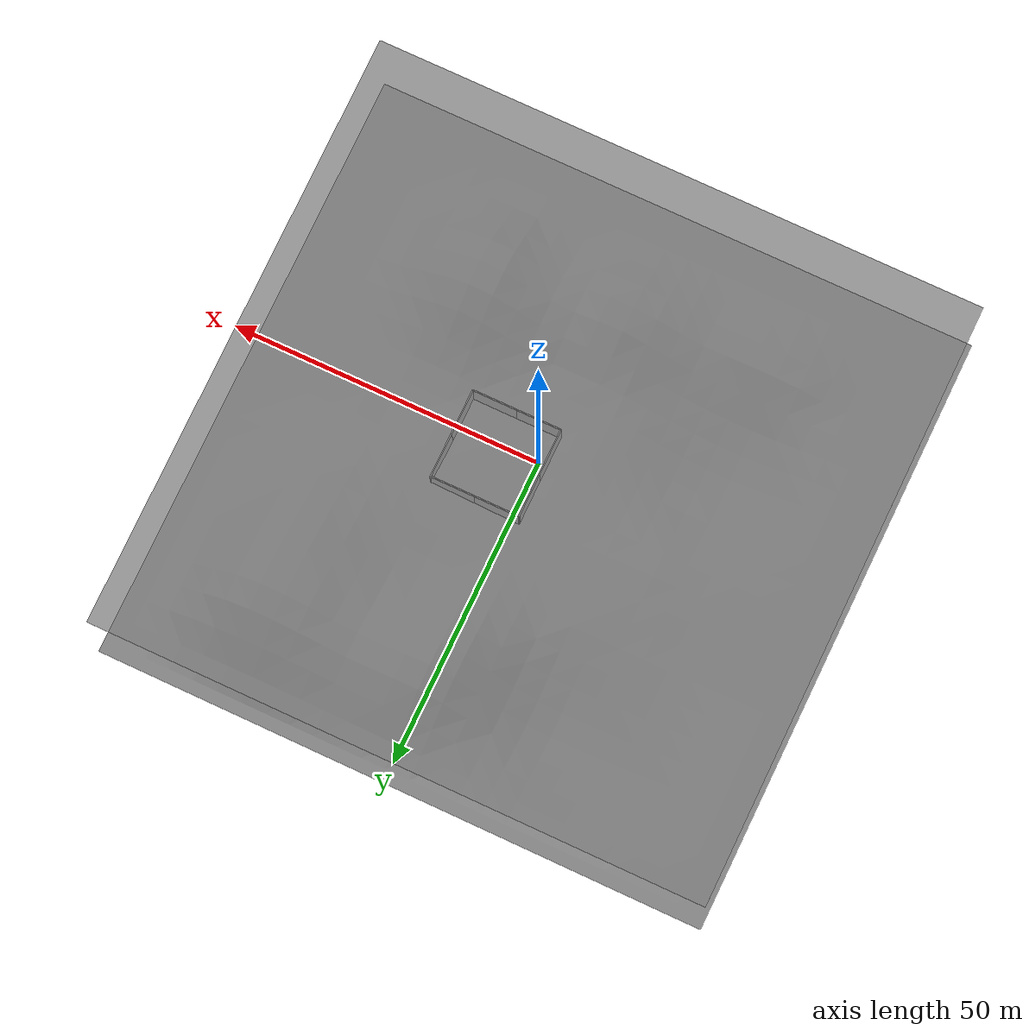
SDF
<?xml version="1.0" ?>
<sdf version="1.6">
  <world name="walls">

    <!-- Base Ignition Gazebo plugins -->
    <plugin
        filename="ignition-gazebo-physics-system"
        name="ignition::gazebo::systems::Physics">
    </plugin>
    <plugin
        filename="ignition-gazebo-user-commands-system"
        name="ignition::gazebo::systems::UserCommands">
    </plugin>
    <plugin
        filename="ignition-gazebo-scene-broadcaster-system"
        name="ignition::gazebo::systems::SceneBroadcaster">
    </plugin>

    <!-- IMU plugin manages all IMU sensors -->
    <plugin filename="libignition-gazebo-imu-system.so"
            name="ignition::gazebo::systems::Imu">
    </plugin>

    <plugin filename="libignition-gazebo-sensors-system.so"
      name="ignition::gazebo::systems::Sensors">
      <render_engine>ogre2</render_engine>
    </plugin>

    <!-- Buoyancy plugin manages buoyancy for all models -->
    <plugin
        filename="ignition-gazebo-buoyancy-system"
        name="ignition::gazebo::systems::Buoyancy">
      <graded_buoyancy>
        <default_density>1000</default_density>
        <density_change>
          <above_depth>0</above_depth>
          <density>1</density>
        </density_change>
      </graded_buoyancy>
    </plugin>

    <!-- Global light source -->
    <light type="directional" name="sun">
      <pose>0 0 150 0 0 0</pose>
      <diffuse>1 1 1 1</diffuse>
      <specular>.1 .1 .1 1</specular>
      <direction>0.3 0.3 -1</direction>
      <cast_shadows>false</cast_shadows>
    </light>

    <!-- Global light source -->
    <light type="directional" name="sun_diffuse">
      <pose>0 0 -150 0 0 0</pose>
      <diffuse>0.6 0.6 0.6 1</diffuse>
      <specular>0 0 0 1</specular>
      <direction>-0.3 -0.3 -1</direction>
      <cast_shadows>false</cast_shadows>
    </light>

    <include>
      <uri>model://min_pipes_environment</uri>
      <pose>0 0 0 0 0 0</pose>
    </include>

    <include>
      <static>true</static>
      <name>Wall1</name>
      <pose>12.15 -10 -20 0 0 0</pose>
      <uri>model://Grey Wall</uri>
    </include>

    <include>
       <static>true</static>
       <name>Wall2</name>
       <pose>4.65 -10 -20 0 0 0</pose>
       <uri>model://Grey Wall</uri>
    </include>

    <include>
       <static>true</static>
       <name>Wall3</name>
       <pose>1 -6.15 -20 0 0 1.5707</pose>
       <uri>model://Grey Wall</uri>
    </include>

    <include>
       <static>true</static>
       <name>Wall4</name>
       <pose>1 1.35 -20 0 0 1.5707</pose>
       <uri>model://Grey Wall</uri>
    </include>

    <include>
       <static>true</static>
       <name>Wall5</name>
       <pose>4.65 5 -20 0 0 0</pose>
       <uri>model://Grey Wall</uri>
    </include>

    <include>
       <static>true</static>
       <name>Wall6</name>
       <pose>12.15 5 -20 0 0 0</pose>
       <uri>model://Grey Wall</uri>
    </include>

    <include>
       <static>true</static>
       <name>Wall7</name>
       <pose>15.80 1.35 -20 0 0 1.5707</pose>
       <uri>model://Grey Wall</uri>
    </include>

    <include>
       <static>true</static>
       <name>Wall8</name>
       <pose>15.80 -6.15 -20 0 0 1.5707</pose>
       <uri>model://Grey Wall</uri>
    </include>

  </world>
</sdf>

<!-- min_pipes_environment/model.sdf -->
<sdf version="1.7">
  <model name="min_pipes_environment">
    <static>true</static>
    <link name="seabed">
      <collision name="seabed">
        <pose>0 0 -20 0 0 1.57</pose>
        <geometry>
          <mesh>
            <uri>meshes/seabed.dae</uri>
            <scale>1.0 1.0 1.0</scale>
          </mesh>
        </geometry>
      </collision>

      <visual name="seabed">
        <cast_shadows>true</cast_shadows>
        <pose>0 0 -20 0 0 1.57</pose>
        <geometry>
          <mesh>
            <uri>meshes/seabed.dae</uri>
            <scale>1.0 1.0 1.0</scale>
          </mesh>
        </geometry>
        <material>
          <pbr>
            <metal>
              <albedo_map>textures/soil_sand_0045_01.jpg</albedo_map>
            </metal>
          </pbr>
          <ambient>0.5 0.5 0.5 1.0</ambient>
          <diffuse>0.5 0.5 0.5 1.0</diffuse>
          <specular>0.2 0.2 0.2 1.0</specular>
        </material>
      </visual>
    </link>

    <link name="ocean_link">
      <visual name="surface">
        <pose>0 0 0 0 0 0</pose>
        <cast_shadows>false</cast_shadows>
        <geometry>
          <box>
            <size>100 100 0.01</size>
          </box>
        </geometry>
        <material>
          <pbr>
            <metal>
              <albedo_map>textures/water_water_0076_03_s.jpg</albedo_map>
            </metal>
          </pbr>
          <ambient> 0.5 0.5 0.5 0.8 </ambient>
          <diffuse> 0.5 0.5 0.5 0.8 </diffuse>
        </material>
      </visual>
    </link>

  </model>
</sdf>

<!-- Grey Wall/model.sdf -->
<sdf version="1.6">
  <model name="grey_wall">
    <static>true</static>
    <link name="link">
      <pose>0 0 1.4 0 0 0</pose>
      <collision name="collision">
        <geometry>
          <box>
            <size>7.5 0.2 6</size>
          </box>
        </geometry>
      </collision>
      <visual name="visual">
        <cast_shadows>true</cast_shadows>
        <geometry>
          <box>
            <size>7.5 0.2 6</size>
          </box>
        </geometry>
        <material>
            <pbr>
              <metal>
                <albedo_map>materials/textures/grey_wall.png</albedo_map>
              </metal>
            </pbr>
            <ambient>0.5 0.5 0.5 1.0</ambient>
            <diffuse>0.5 0.5 0.5 1.0</diffuse>
            <specular>0.2 0.2 0.2 1.0</specular>
        </material>
      </visual>
    </link>
  </model>
</sdf>
